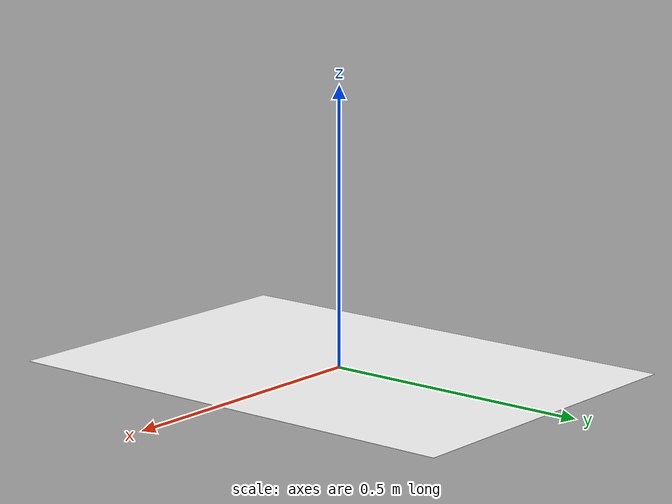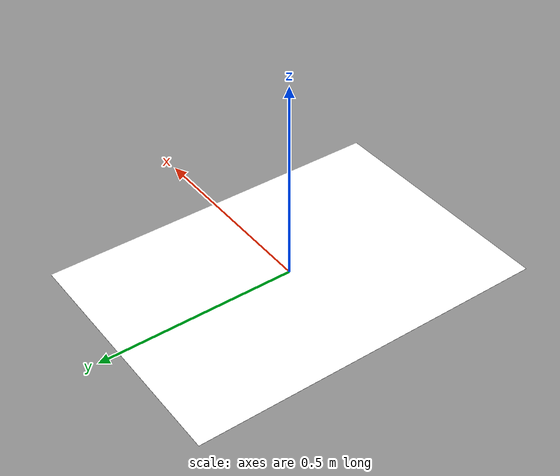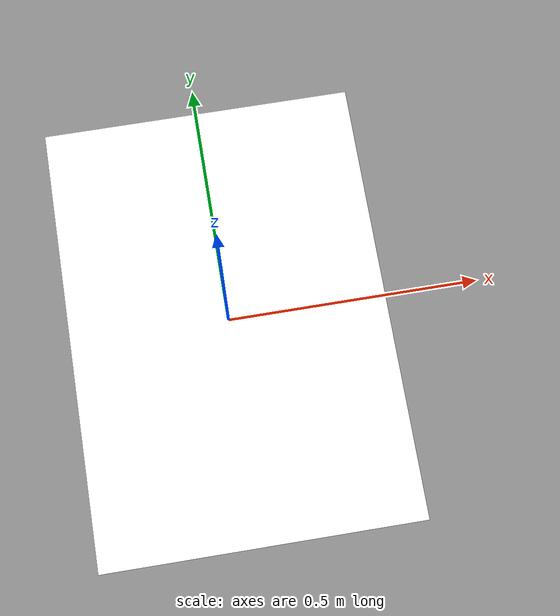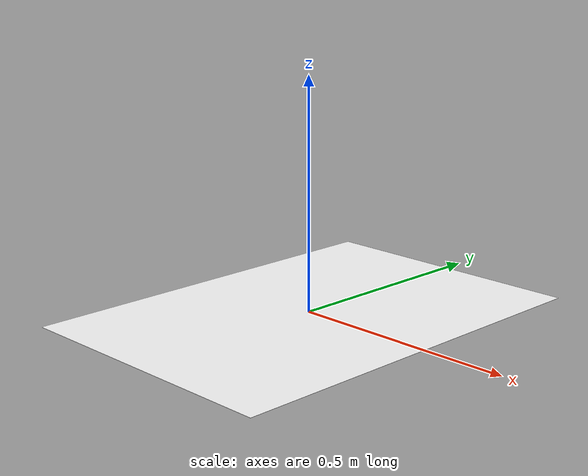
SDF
<?xml version='1.0'?>
<sdf version='1.6'>
  <model name='race_track'>
    <static>true</static>
    <link name='link'>
      <visual name='visual'>
        <geometry>
          <box>
            <size>0.63 0.9 0.000553</size>
          </box>
        </geometry>
        <material>
          <script>
            <name>RaceTrack/track</name>
	    <uri>model://racetrack/materials/scripts</uri>
            <uri>model://racetrack/materials/textures</uri>
          </script>
          <ambient>1 1 1 1</ambient>
          <diffuse>1 1 1 1</diffuse>
          <specular>0.01 0.01 0.01 1</specular>
          <emissive>1 1 1 1</emissive>
        </material>
        <transparency>0</transparency>
      </visual>
      <collision name='collision'>
        <geometry>
          <box>
            <size>0.63 0.9 0.000553</size>
          </box>
        </geometry>
	<surface>
          <friction>
            <ode>
              <mu>100</mu>
              <mu2>50</mu2>
            </ode>
          </friction>
        </surface>
      </collision>
    </link>
  </model>
</sdf>
